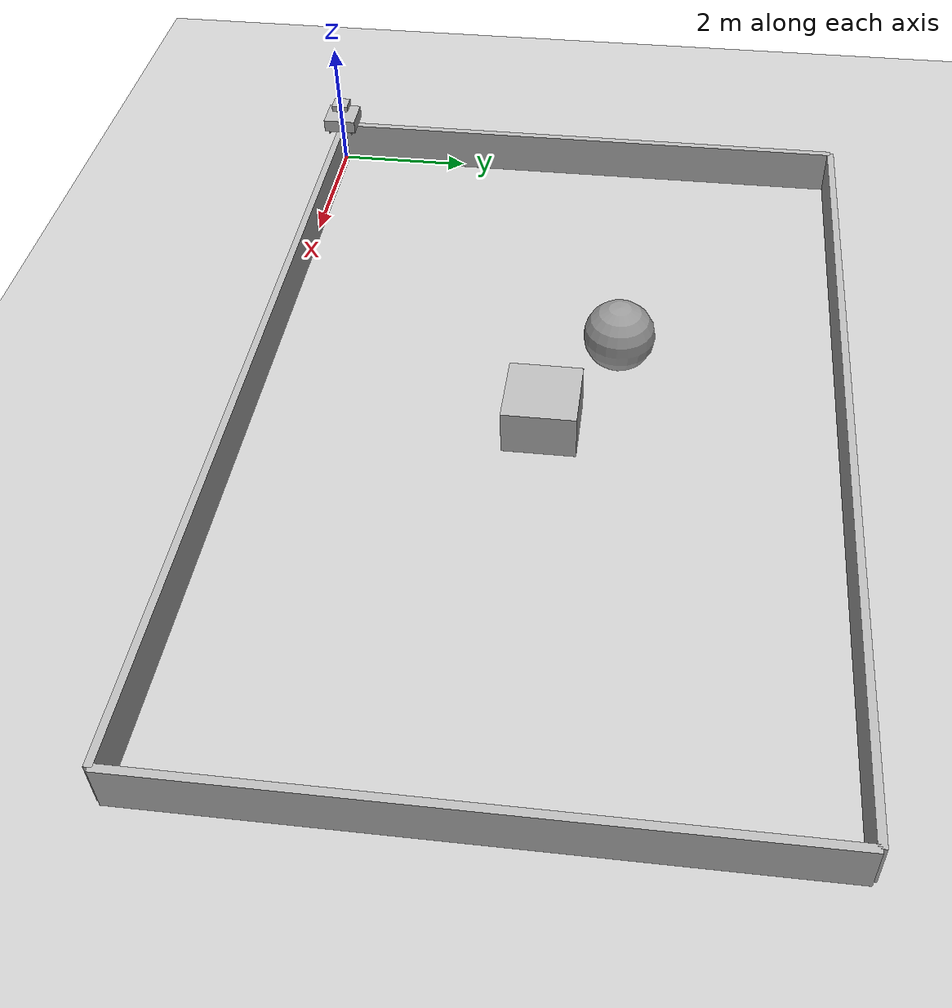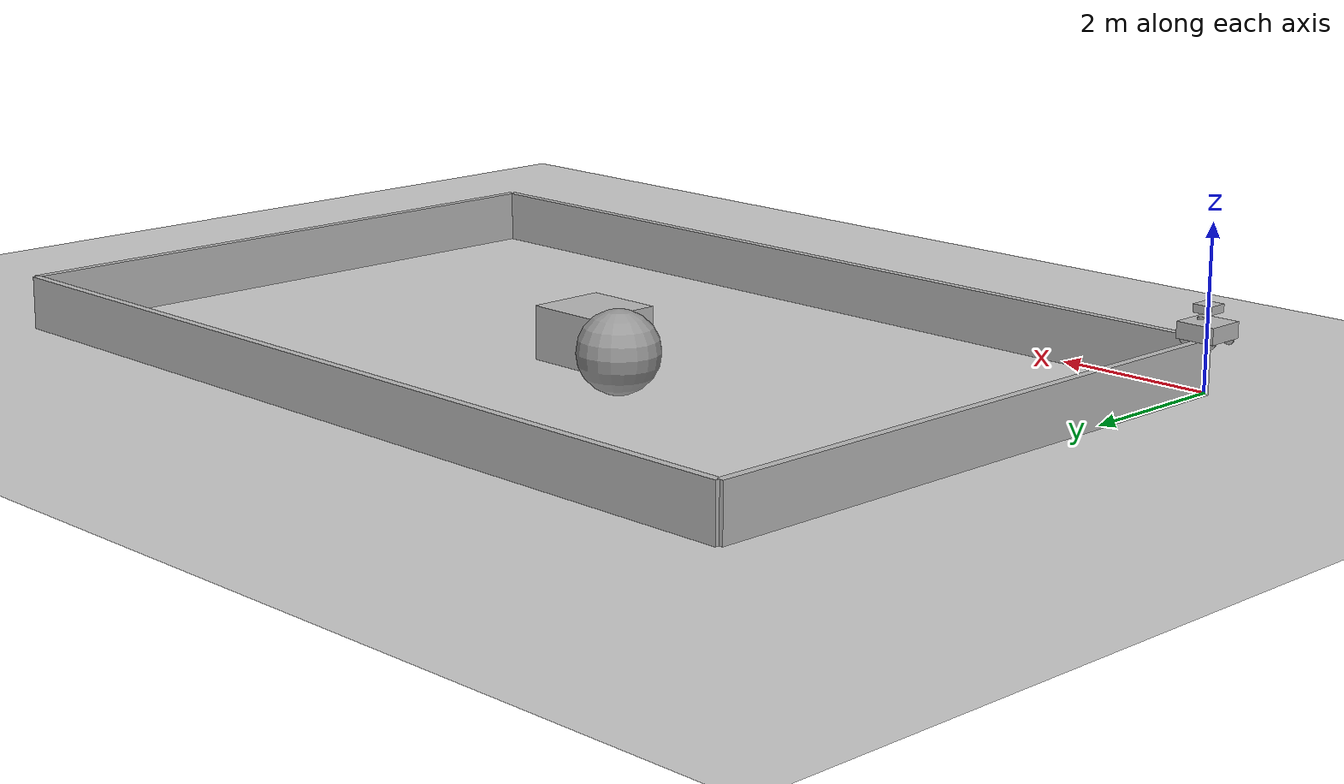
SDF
<sdf version="1.7">
 <world name="default">
  <physics type="ode">
   <max_step_size>0.002</max_step_size>
   <real_time_factor>1</real_time_factor>
   <real_time_update_rate>1000</real_time_update_rate>
   <ode>
    <solver>
     <type>quick</type>
     <iters>50</iters>
     <sor>1.3</sor>
     <friction_model>cone_model</friction_model>
     <use_dynamic_moi_rescaling>0</use_dynamic_moi_rescaling>
    </solver>
    <constraints>
     <cfm>0</cfm>
     <erp>0.2</erp>
     <contact_max_correcting_vel>100</contact_max_correcting_vel>
     <contact_surface_layer>0.005</contact_surface_layer>
    </constraints>
   </ode>
  </physics>
  <plugin name="gazebo_ros_state" filename="libgazebo_ros_state.so"><update_rate>60</update_rate></plugin>
  <light name="sun" type="directional">
   <pose>0 0 10 0 -0 0</pose>
   <diffuse>0.8 0.8 0.8 1</diffuse>
   <specular>0.2 0.2 0.2 1</specular>
   <attenuation>
    <range>1000</range>
    <constant>0.9</constant>
    <linear>0.01</linear>
    <quadratic>0.001</quadratic>
   </attenuation>
   <direction>-0.5 0.1 -0.9</direction>
   <spot><inner_angle>0</inner_angle><outer_angle>0</outer_angle><falloff>0</falloff></spot>
  </light>
  <model name="ground_plane">
   <static>1</static>
   <link name="link">
    <collision name="collision">
     <geometry><plane><normal>0 0 1</normal><size>100 100</size></plane></geometry>
     <surface>
      <friction><ode><mu>100</mu><mu2>100</mu2></ode></friction>
      <contact><ode><kp>1e+06</kp><kd>100</kd></ode></contact>
     </surface>
    </collision>
    <visual name="visual">
     <cast_shadows>0</cast_shadows>
     <geometry><plane><normal>0 0 1</normal><size>100 100</size></plane></geometry>
    </visual>
   </link>
  </model>
  <model name="walls">
   <static>1</static>
   <pose>0 0 0.1524 0 -0 0</pose>
   <link name="wall_1">
    <pose>6 0 0 0 -0 0</pose>
    <visual name="visual"><geometry><box><size>12 0.1 1</size></box></geometry></visual>
    <collision name="collision"><geometry><box><size>12 0.1 1</size></box></geometry></collision>
   </link>
   <link name="wall_2">
    <pose>0 4 0 0 -0 0</pose>
    <visual name="visual"><geometry><box><size>0.1 8 1</size></box></geometry></visual>
    <collision name="collision"><geometry><box><size>0.1 8 1</size></box></geometry></collision>
   </link>
   <link name="wall_3">
    <pose>6 8 0 0 -0 0</pose>
    <visual name="visual"><geometry><box><size>12 0.1 1</size></box></geometry></visual>
    <collision name="collision"><geometry><box><size>12 0.1 1</size></box></geometry></collision>
   </link>
   <link name="wall_4">
    <pose>12 4 0 0 -0 0</pose>
    <visual name="visual"><geometry><box><size>0.1 8 1</size></box></geometry></visual>
    <collision name="collision"><geometry><box><size>0.1 8 1</size></box></geometry></collision>
   </link>
   <link name="wall_5">
    <pose>6 4 0 0 -0 0</pose>
    <visual name="visual"><geometry><box><size>1 1 1</size></box></geometry></visual>
    <collision name="collision"><geometry><box><size>0.1 8 1</size></box></geometry></collision>
   </link>
  </model>
  <gravity>0 0 -9.8</gravity>
  <magnetic_field>6e-06 2.3e-05 -4.2e-05</magnetic_field>
  <atmosphere type="adiabatic"/>
  <scene><ambient>0.4 0.4 0.4 1</ambient><background>0.7 0.7 0.7 1</background><shadows>1</shadows></scene>
  <spherical_coordinates>
   <surface_model>EARTH_WGS84</surface_model>
   <latitude_deg>0</latitude_deg>
   <longitude_deg>0</longitude_deg>
   <elevation>0</elevation>
   <heading_deg>0</heading_deg>
  </spherical_coordinates>
  <model name="sentry">
   <link name="base_link">
    <inertial>
     <pose>0.000609 0 0.100745 0 -0 0</pose>
     <mass>20.125</mass>
     <inertia>
      <ixx>0.836099</ixx>
      <ixy>0</ixy>
      <ixz>-0.00146087</ixz>
      <iyy>0.837292</iyy>
      <iyz>0</iyz>
      <izz>0.485503</izz>
     </inertia>
    </inertial>
    <collision name="base_link_collision">
     <pose>0 0 0.1 0 -0 0</pose>
     <geometry><box><size>0.5 0.5 0.2</size></box></geometry>
    </collision>
    <collision name="base_link_fixed_joint_lump__turret_collision_1">
     <pose>0 0 0.25654 0 -0 0</pose>
     <geometry><cylinder><length>0.1</length><radius>0.025</radius></cylinder></geometry>
    </collision>
    <visual name="base_link_visual">
     <pose>0 0 0.1 0 -0 0</pose>
     <geometry><box><size>0.5 0.5 0.2</size></box></geometry>
    </visual>
    <visual name="base_link_fixed_joint_lump__turret_visual_1">
     <pose>0 0 0.25654 0 -0 0</pose>
     <geometry><cylinder><length>0.1</length><radius>0.025</radius></cylinder></geometry>
    </visual>
    <visual name="base_link_fixed_joint_lump__turret_visual_2">
     <pose>0 0 0.35654 0 -0 0</pose>
     <geometry><box><size>0.25 0.25 0.1</size></box></geometry>
    </visual>
    <visual name="base_link_fixed_joint_lump__lidar_link_visual_3">
     <pose>0.098 0 0.22 0 -0 0</pose>
     <geometry><cylinder><length>0.0254</length><radius>0.034925</radius></cylinder></geometry>
    </visual>
    <sensor name="lidar" type="ray">
     <always_on>1</always_on>
     <visualize>1</visualize>
     <update_rate>5</update_rate>
     <ray>
      <scan>
       <horizontal>
        <samples>360</samples>
        <resolution>1</resolution>
        <min_angle>0</min_angle>
        <max_angle>6.28</max_angle>
       </horizontal>
       <vertical><samples>1</samples><min_angle>0</min_angle><max_angle>0</max_angle></vertical>
      </scan>
      <range><min>0.12</min><max>3.5</max><resolution>0.015</resolution></range>
      <noise><type>gaussian</type><mean>0</mean><stddev>0.01</stddev></noise>
     </ray>
     <plugin name="scan" filename="libgazebo_ros_ray_sensor.so">
      <ros><remapping>~/out:=scan</remapping></ros>
      <output_type>sensor_msgs/LaserScan</output_type>
      <frame_name>lidar_link</frame_name>
     </plugin>
     <pose>0.098 0 0.22 0 -0 0</pose>
    </sensor>
   </link>
   <joint name="base_back_left_wheel_joint" type="revolute">
    <pose relative_to="base_link">-0.17 0.183 0 -1.5708 0 0</pose>
    <parent>base_link</parent>
    <child>back_left_wheel</child>
    <axis>
     <xyz>0 0 1</xyz>
     <limit><lower>-1e+16</lower><upper>1e+16</upper></limit>
     <dynamics><spring_reference>0</spring_reference><spring_stiffness>0</spring_stiffness></dynamics>
    </axis>
   </joint>
   <link name="back_left_wheel">
    <pose relative_to="base_back_left_wheel_joint">0 0 0 0 -0 0</pose>
    <inertial>
     <mass>0.4545</mass>
     <inertia>
      <ixx>0.000975</ixx>
      <ixy>0</ixy>
      <ixz>0</ixz>
      <iyy>0.000975</iyy>
      <iyz>0</iyz>
      <izz>0.001902</izz>
     </inertia>
    </inertial>
    <collision name="back_left_wheel_collision">
     <geometry><cylinder><length>0.0125</length><radius>0.07625</radius></cylinder></geometry>
    </collision>
    <visual name="back_left_wheel_visual">
     <geometry><cylinder><length>0.0125</length><radius>0.07625</radius></cylinder></geometry>
    </visual>
   </link>
   <joint name="base_back_right_wheel_joint" type="revolute">
    <pose relative_to="base_link">-0.17 -0.183 0 -1.5708 0 0</pose>
    <parent>base_link</parent>
    <child>back_right_wheel</child>
    <axis>
     <xyz>0 0 1</xyz>
     <limit><lower>-1e+16</lower><upper>1e+16</upper></limit>
     <dynamics><spring_reference>0</spring_reference><spring_stiffness>0</spring_stiffness></dynamics>
    </axis>
   </joint>
   <link name="back_right_wheel">
    <pose relative_to="base_back_right_wheel_joint">0 0 0 0 -0 0</pose>
    <inertial>
     <mass>0.4545</mass>
     <inertia>
      <ixx>0.000975</ixx>
      <ixy>0</ixy>
      <ixz>0</ixz>
      <iyy>0.000975</iyy>
      <iyz>0</iyz>
      <izz>0.001902</izz>
     </inertia>
    </inertial>
    <collision name="back_right_wheel_collision">
     <geometry><cylinder><length>0.0125</length><radius>0.07625</radius></cylinder></geometry>
    </collision>
    <visual name="back_right_wheel_visual">
     <geometry><cylinder><length>0.0125</length><radius>0.07625</radius></cylinder></geometry>
    </visual>
   </link>
   <joint name="base_front_left_wheel_joint" type="revolute">
    <pose relative_to="base_link">0.17 0.183 0 -1.5708 0 0</pose>
    <parent>base_link</parent>
    <child>front_left_wheel</child>
    <axis>
     <xyz>0 0 1</xyz>
     <limit><lower>-1e+16</lower><upper>1e+16</upper></limit>
     <dynamics><spring_reference>0</spring_reference><spring_stiffness>0</spring_stiffness></dynamics>
    </axis>
   </joint>
   <link name="front_left_wheel">
    <pose relative_to="base_front_left_wheel_joint">0 0 0 0 -0 0</pose>
    <inertial>
     <mass>0.4545</mass>
     <inertia>
      <ixx>0.000975</ixx>
      <ixy>0</ixy>
      <ixz>0</ixz>
      <iyy>0.000975</iyy>
      <iyz>0</iyz>
      <izz>0.001902</izz>
     </inertia>
    </inertial>
    <collision name="front_left_wheel_collision">
     <geometry><cylinder><length>0.0125</length><radius>0.07625</radius></cylinder></geometry>
    </collision>
    <visual name="front_left_wheel_visual">
     <geometry><cylinder><length>0.0125</length><radius>0.07625</radius></cylinder></geometry>
    </visual>
   </link>
   <joint name="base_front_right_wheel_joint" type="revolute">
    <pose relative_to="base_link">0.17 -0.183 0 -1.5708 0 0</pose>
    <parent>base_link</parent>
    <child>front_right_wheel</child>
    <axis>
     <xyz>0 0 1</xyz>
     <limit><lower>-1e+16</lower><upper>1e+16</upper></limit>
     <dynamics><spring_reference>0</spring_reference><spring_stiffness>0</spring_stiffness></dynamics>
    </axis>
   </joint>
   <link name="front_right_wheel">
    <pose relative_to="base_front_right_wheel_joint">0 0 0 0 -0 0</pose>
    <inertial>
     <mass>0.4545</mass>
     <inertia>
      <ixx>0.000975</ixx>
      <ixy>0</ixy>
      <ixz>0</ixz>
      <iyy>0.000975</iyy>
      <iyz>0</iyz>
      <izz>0.001902</izz>
     </inertia>
    </inertial>
    <collision name="front_right_wheel_collision">
     <geometry><cylinder><length>0.0125</length><radius>0.07625</radius></cylinder></geometry>
    </collision>
    <visual name="front_right_wheel_visual">
     <geometry><cylinder><length>0.0125</length><radius>0.07625</radius></cylinder></geometry>
    </visual>
   </link>
   <static>0</static>
   <plugin name="gazebo_mecanum_drive" filename="libgazebo_mecanum_drive.so">
    <commandTopic>cmd_vel</commandTopic>
    <odometryTopic>odom</odometryTopic>
    <odometryFrame>world</odometryFrame>
    <robotBaseFrame>base_link</robotBaseFrame>
    <LeftRear>base_back_left_wheel_joint</LeftRear>
    <LeftFront>base_front_left_wheel_joint</LeftFront>
    <RightFront>base_front_right_wheel_joint</RightFront>
    <RightRear>base_back_right_wheel_joint</RightRear>
    <odometryRate>20</odometryRate>
    <publishWheelTF>1</publishWheelTF>
    <publishWheelJointState>1</publishWheelJointState>
    <WheelTorque>20.0</WheelTorque>
    <WheelSeparationW>0.5</WheelSeparationW>
    <WheelSeparationL>0.5</WheelSeparationL>
    <wheelAccel>10.0</wheelAccel>
    <wheelDiameter>0.13</wheelDiameter>
    <publishOdom>1</publishOdom>
    <publishOdomTF>1</publishOdomTF>
    <isRollerModel>0</isRollerModel>
   </plugin>
   <pose>0.006769 0.005004 0.652404 5.9e-05 -5.9e-05 -0.001056</pose>
  </model>
  <model name="random_wreckingball">
   <link name="link_0">
    <inertial>
     <mass>4120.72</mass>
     <inertia><ixx>412.072</ixx><ixy>0</ixy><ixz>0</ixz><iyy>412.072</iyy><iyz>0</iyz><izz>412.072</izz></inertia>
     <pose>0 10 0 0 -0 0</pose>
    </inertial>
    <visual name="visual">
     <pose>0 10 0 0 -0 0</pose>
     <geometry><sphere><radius>0.5</radius></sphere></geometry>
     <material>
      <lighting>1</lighting>
      <script><uri>file://media/materials/scripts/gazebo.material</uri><name>Gazebo/Grey</name></script>
      <shader type="pixel"><normal_map>__default__</normal_map></shader>
      <ambient>0.3 0.3 0.3 1</ambient>
      <diffuse>0.7 0.7 0.7 1</diffuse>
      <specular>0.01 0.01 0.01 1</specular>
      <emissive>0 0 0 1</emissive>
     </material>
    </visual>
    <collision name="collision">
     <geometry><sphere><radius>0.5</radius></sphere></geometry>
     <surface>
      <friction>
       <ode><mu>1</mu><mu2>1</mu2><fdir1>0 0 0</fdir1><slip1>0</slip1><slip2>0</slip2></ode>
       <torsional>
        <coefficient>1</coefficient>
        <patch_radius>0</patch_radius>
        <surface_radius>0</surface_radius>
        <use_patch_radius>1</use_patch_radius>
        <ode><slip>0</slip></ode>
       </torsional>
      </friction>
      <bounce><restitution_coefficient>0</restitution_coefficient><threshold>1e+06</threshold></bounce>
      <contact>
       <collide_without_contact>0</collide_without_contact>
       <collide_without_contact_bitmask>1</collide_without_contact_bitmask>
       <collide_bitmask>1</collide_bitmask>
       <ode>
        <soft_cfm>0</soft_cfm>
        <soft_erp>0.2</soft_erp>
        <kp>1e+13</kp>
        <kd>1</kd>
        <max_vel>0.01</max_vel>
        <min_depth>0</min_depth>
       </ode>
       <bullet>
        <split_impulse>1</split_impulse>
        <split_impulse_penetration_threshold>-0.01</split_impulse_penetration_threshold>
        <soft_cfm>0</soft_cfm>
        <soft_erp>0.2</soft_erp>
        <kp>1e+13</kp>
        <kd>1</kd>
       </bullet>
      </contact>
     </surface>
    </collision>
   </link>
   <static>1</static>
   <pose>4.60752 -5.07748 0.5 0 -0 0</pose>
  </model>
 </world>
</sdf>
